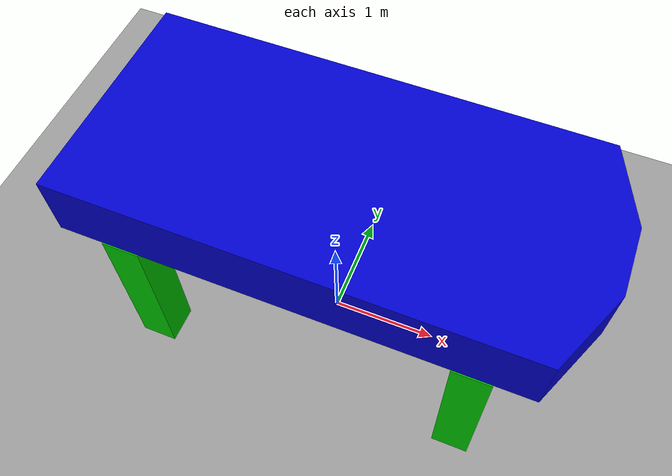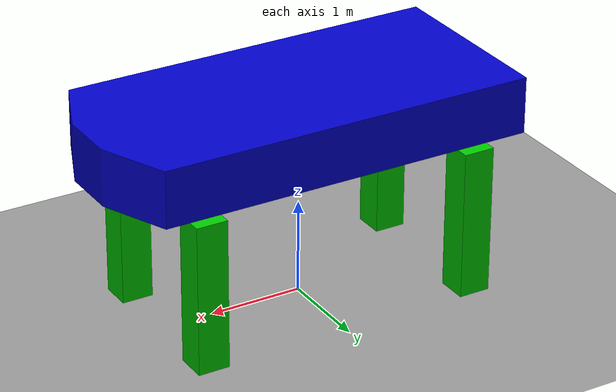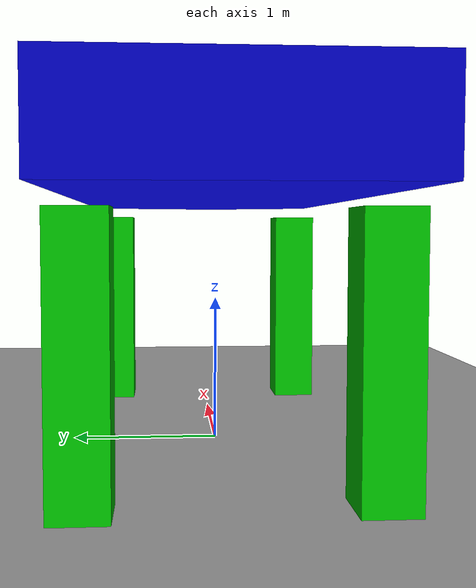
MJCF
<mujoco model="dog">
  <compiler angle="degree" />
  <option gravity="0 0 -9.81">
    <flag />
  </option>
  <default>
    <geom type="mesh" xyaxes="0 1 0   -1 0 0" />
  </default>
  <asset>
    <mesh name="body" file="body.stl" />
    <mesh name="leg_fl" file="leg_fl.stl" />
    <mesh name="leg_fr" file="leg_fr.stl" />
    <mesh name="leg_br" file="leg_br.stl" />
    <mesh name="leg_bl" file="leg_bl.stl" />
  </asset>
  <worldbody>
    <geom name="floor" type="plane" pos="0 0 0" size="0 0 1" rgba="0.6 0.6 0.6 1" />
    <body name="body" pos="0 0 2">
      <freejoint />
      <geom name="body" mesh="body" rgba="0 0 0.8 1" />
      <body name="leg_fl">
        <geom name="leg_fl" mesh="leg_fl" rgba="0 0.8 0 1" />
        <joint name="hip_fl" pos="1.5 0.8 -0.2" axis="0 1 0" limited="true" range="-45 45" />
      </body>
      <body name="leg_fr">
        <geom name="leg_fr" mesh="leg_fr" rgba="0 0.8 0 1" />
        <joint name="hip_fr" pos="1.5 -0.8 -0.2" axis="0 1 0" limited="true" range="-45 45" />
      </body>
      <body name="leg_br">
        <geom name="leg_br" mesh="leg_br" rgba="0 0.8 0 1" />
        <joint name="hip_br" pos="-1.5 -0.8 -0.2" axis="0 1 0" limited="true" range="-45 45" />
      </body>
      <body name="leg_bl">
        <geom name="leg_bl" mesh="leg_bl" rgba="0 0.8 0 1" />
        <joint name="hip_bl" pos="-1.5 0.8 -0.2" axis="0 1 0" limited="true" range="-45 45" />
      </body>
    </body>
  </worldbody>
  <actuator>
    <position name="hip_fl" joint="hip_fl" ctrllimited="true" ctrlrange="-45 45" kp="1000" kv="10" />
    <position name="hip_fr" joint="hip_fr" ctrllimited="true" ctrlrange="-45 45" kp="1000" kv="10" />
    <position name="hip_br" joint="hip_br" ctrllimited="true" ctrlrange="-45 45" kp="1000" kv="10" />
    <position name="hip_bl" joint="hip_bl" ctrllimited="true" ctrlrange="-45 45" kp="1000" kv="10" />
  </actuator>
</mujoco>
